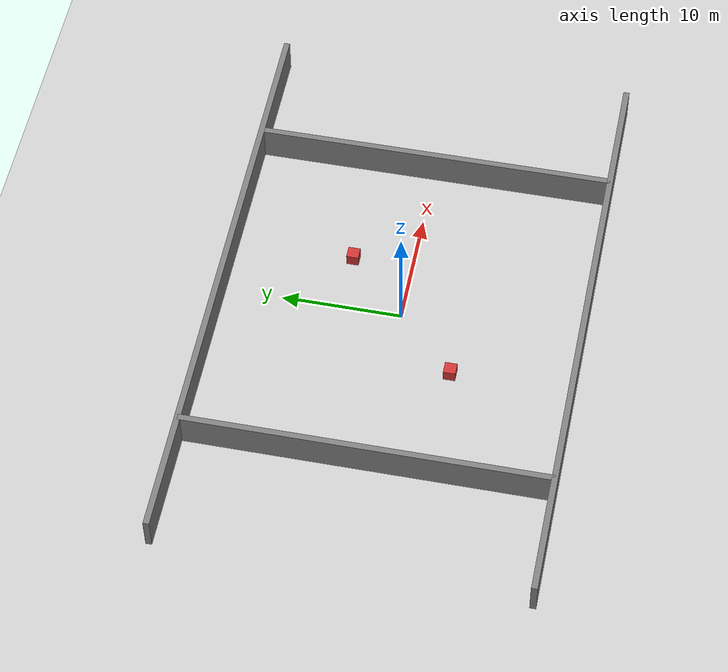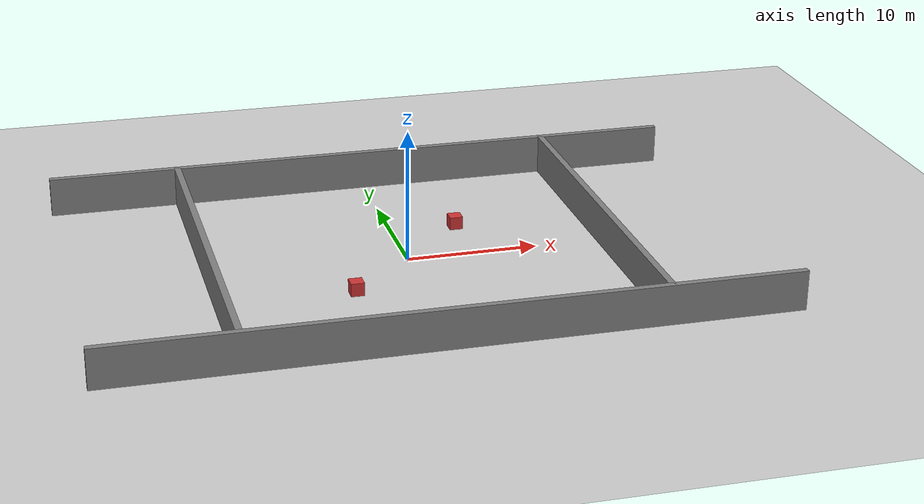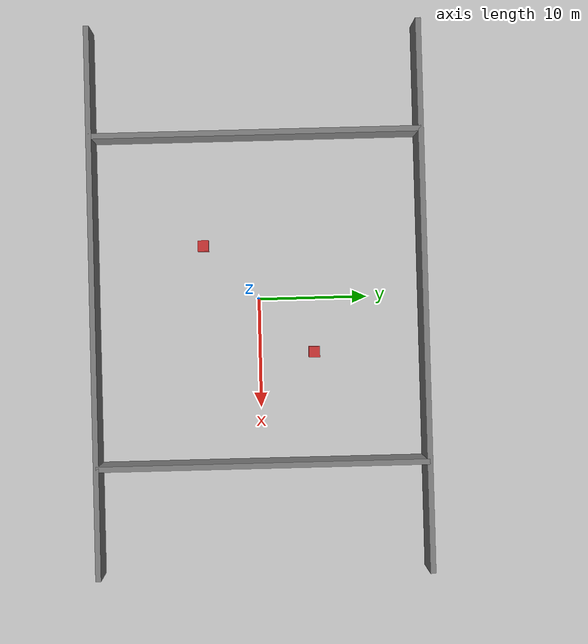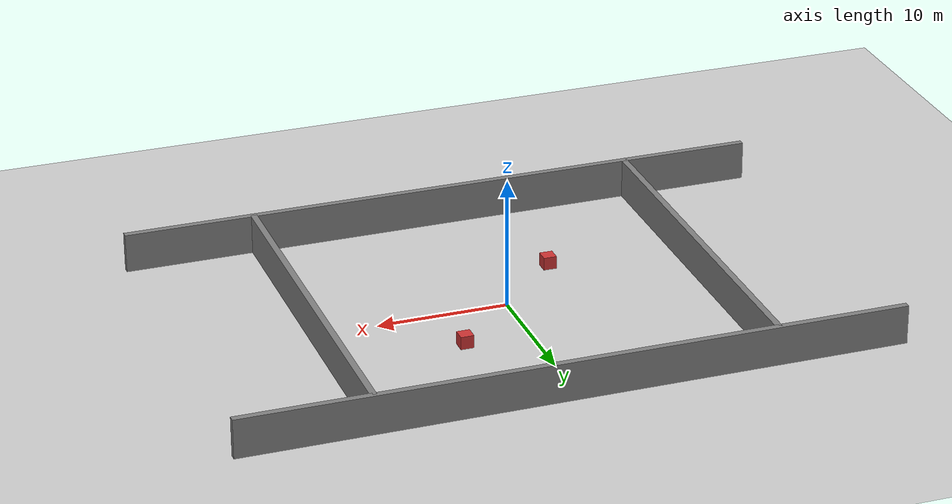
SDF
<?xml version="1.0" ?>
<sdf version="1.7">
  <world name="simple_urban">
    <!-- Physics -->
    <physics type="ode">
      <max_step_size>0.001</max_step_size>
      <real_time_factor>1</real_time_factor>
      <real_time_update_rate>1000</real_time_update_rate>
      <gravity>0 0 -9.81</gravity>
    </physics>

    <!-- Scene -->
    <scene>
      <ambient>0.6 0.6 0.6 1</ambient>
      <background>0.7 0.7 0.7 1</background>
      <shadows>1</shadows>
    </scene>

    <!-- Ground Plane -->
    <model name="ground_plane">
      <static>true</static>
      <link name="link">
        <collision name="collision">
          <geometry>
            <plane>
              <normal>0 0 1</normal>
              <size>100 100</size>
            </plane>
          </geometry>
        </collision>
        <visual name="visual">
          <geometry>
            <plane>
              <normal>0 0 1</normal>
              <size>100 100</size>
            </plane>
          </geometry>
          <material>
            <ambient>0.8 0.8 0.8 1</ambient>
            <diffuse>0.8 0.8 0.8 1</diffuse>
            <specular>0.8 0.8 0.8 1</specular>
          </material>
        </visual>
      </link>
    </model>

    <!-- Sun -->
    <light type="directional" name="sun">
      <cast_shadows>true</cast_shadows>
      <pose>0 0 10 0 0 0</pose>
      <diffuse>0.8 0.8 0.8 1</diffuse>
      <specular>0.2 0.2 0.2 1</specular>
      <attenuation>
        <range>1000</range>
        <constant>0.9</constant>
        <linear>0.01</linear>
        <quadratic>0.001</quadratic>
      </attenuation>
      <direction>-0.5 0.1 -0.9</direction>
    </light>

    <!-- Walls and Buildings -->
    <model name="north_wall">
      <static>true</static>
      <pose>0 15 1.5 0 0 0</pose>
      <link name="link">
        <collision name="collision">
          <geometry>
            <box>
              <size>50 0.5 3</size>
            </box>
          </geometry>
        </collision>
        <visual name="visual">
          <geometry>
            <box>
              <size>50 0.5 3</size>
            </box>
          </geometry>
          <material>
            <ambient>0.5 0.5 0.5 1</ambient>
            <diffuse>0.5 0.5 0.5 1</diffuse>
          </material>
        </visual>
      </link>
    </model>

    <model name="south_wall">
      <static>true</static>
      <pose>0 -15 1.5 0 0 0</pose>
      <link name="link">
        <collision name="collision">
          <geometry>
            <box>
              <size>50 0.5 3</size>
            </box>
          </geometry>
        </collision>
        <visual name="visual">
          <geometry>
            <box>
              <size>50 0.5 3</size>
            </box>
          </geometry>
          <material>
            <ambient>0.5 0.5 0.5 1</ambient>
            <diffuse>0.5 0.5 0.5 1</diffuse>
          </material>
        </visual>
      </link>
    </model>

    <model name="east_wall">
      <static>true</static>
      <pose>15 0 1.5 0 0 0</pose>
      <link name="link">
        <collision name="collision">
          <geometry>
            <box>
              <size>0.5 30 3</size>
            </box>
          </geometry>
        </collision>
        <visual name="visual">
          <geometry>
            <box>
              <size>0.5 30 3</size>
            </box>
          </geometry>
          <material>
            <ambient>0.5 0.5 0.5 1</ambient>
            <diffuse>0.5 0.5 0.5 1</diffuse>
          </material>
        </visual>
      </link>
    </model>

    <model name="west_wall">
      <static>true</static>
      <pose>-15 0 1.5 0 0 0</pose>
      <link name="link">
        <collision name="collision">
          <geometry>
            <box>
              <size>0.5 30 3</size>
            </box>
          </geometry>
        </collision>
        <visual name="visual">
          <geometry>
            <box>
              <size>0.5 30 3</size>
            </box>
          </geometry>
          <material>
            <ambient>0.5 0.5 0.5 1</ambient>
            <diffuse>0.5 0.5 0.5 1</diffuse>
          </material>
        </visual>
      </link>
    </model>

    <!-- Obstacle 1 -->
    <model name="obstacle_1">
      <static>true</static>
      <pose>5 5 0.5 0 0 0</pose>
      <link name="link">
        <collision name="collision">
          <geometry>
            <box>
              <size>1 1 1</size>
            </box>
          </geometry>
        </collision>
        <visual name="visual">
          <geometry>
            <box>
              <size>1 1 1</size>
            </box>
          </geometry>
          <material>
            <ambient>0.8 0.2 0.2 1</ambient>
            <diffuse>0.8 0.2 0.2 1</diffuse>
          </material>
        </visual>
      </link>
    </model>

    <!-- Obstacle 2 -->
    <model name="obstacle_2">
      <static>true</static>
      <pose>-5 -5 0.5 0 0 0</pose>
      <link name="link">
        <collision name="collision">
          <geometry>
            <box>
              <size>1 1 1</size>
            </box>
          </geometry>
        </collision>
        <visual name="visual">
          <geometry>
            <box>
              <size>1 1 1</size>
            </box>
          </geometry>
          <material>
            <ambient>0.8 0.2 0.2 1</ambient>
            <diffuse>0.8 0.2 0.2 1</diffuse>
          </material>
        </visual>
      </link>
    </model>

  </world>
</sdf>
